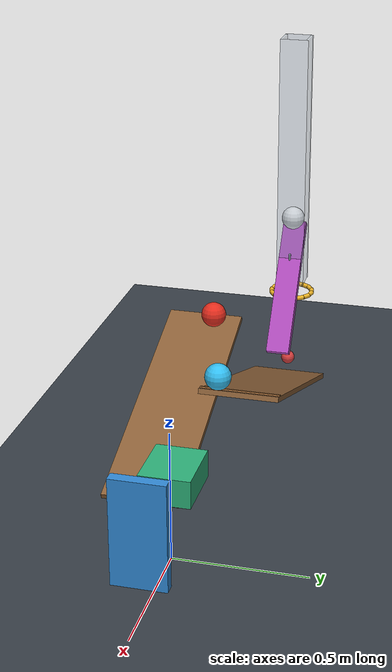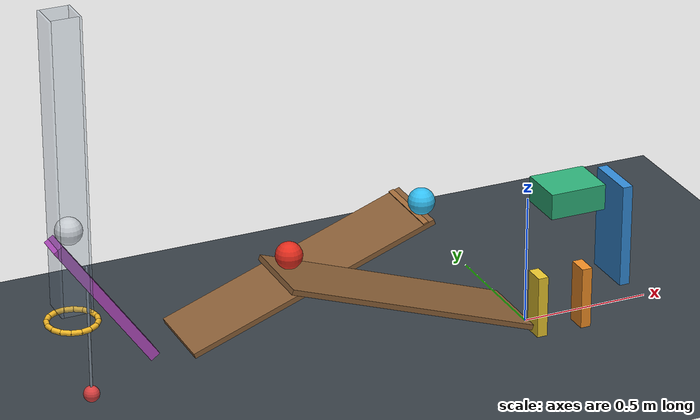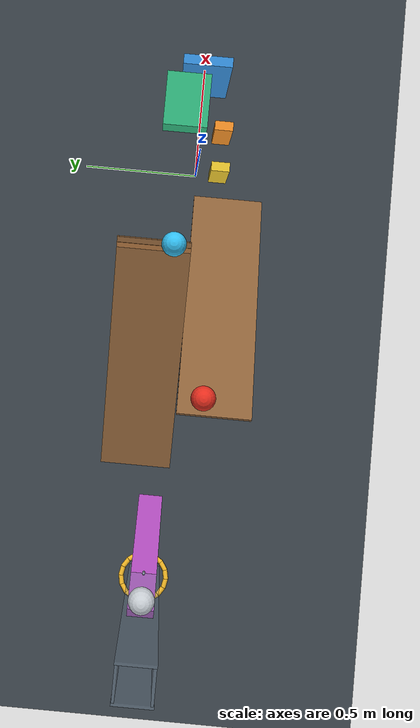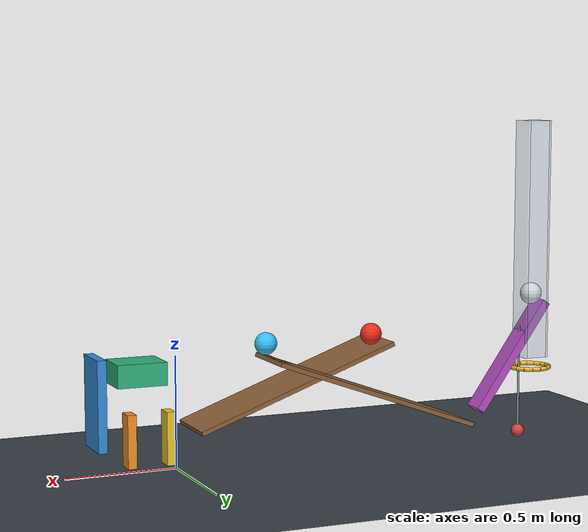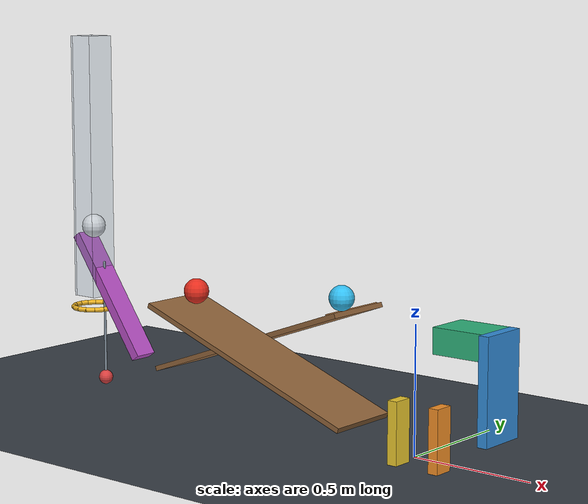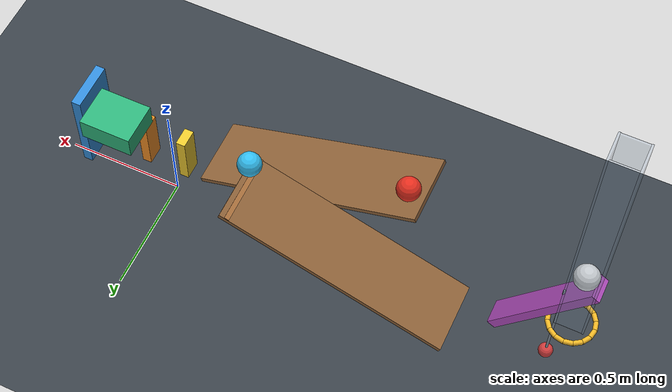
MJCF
<mujoco model="passive_chain_reaction">
  <compiler angle="degree" autolimits="true" inertiafromgeom="true"/>
  <option timestep="0.002" gravity="0 0 -9.81" integrator="implicitfast" solver="Newton" iterations="100" tolerance="1e-10"/>
  <size njmax="3000" nconmax="500"/>

  <default>
    <joint armature="0" frictionloss="0" solreflimit="0.004 1" solimplimit="0.999 0.9999 0.0001"/>
    <geom friction="0.70 0.005 0.0001" condim="3" solref="0.008 0.6901" solimp="0.95 0.99 0.001" margin="0" rgba="0.65 0.65 0.70 1"/>
  </default>

  <visual>
    <headlight ambient="0.45 0.45 0.45" diffuse="0.75 0.75 0.75" specular="0.15 0.15 0.15"/>
    <global azimuth="130" elevation="-20"/>
  </visual>

  <worldbody>
    <light name="overhead_light" pos="-0.8 -1.5 3" dir="0.1 0.3 -1" directional="true"/>
    <camera name="overview" pos="-3.4 -4.2 2.6" xyaxes="0.85 -0.53 0 0.24 0.38 0.89"/>
    <geom name="floor" type="plane" size="5 4 0.1" rgba="0.22 0.25 0.28 1"/>

    <!-- Ramp surface: 1.00 m long, 0.30 m wide; low surface edge z = 0.15. -->
    <body name="ramp1" pos="-0.593266511 -0.15 0.311613146" quat="0.984807753 0 0.173648178 0">
      <geom name="ramp1_surface" type="box" size="0.50 0.15 0.01" rgba="0.55 0.38 0.22 1"/>
    </body>

    <body name="ball1" pos="-0.990908 -0.10 0.520194">
      <freejoint name="ball1_free"/>
      <geom name="ball1_sphere" type="sphere" size="0.05" mass="0.20" rgba="0.90 0.18 0.12 1"/>
    </body>

    <!-- The ramp exit is 0.10 m from domino1's upstream face. -->
    <body name="domino1" pos="0 -0.10 0.12">
      <freejoint name="domino1_free"/>
      <geom name="domino1_box" type="box" size="0.02 0.04 0.12" mass="0.25" rgba="0.92 0.78 0.18 1"/>
    </body>

    <body name="domino2" pos="0.18 -0.10 0.12">
      <freejoint name="domino2_free"/>
      <geom name="domino2_box" type="box" size="0.02 0.04 0.12" mass="0.25" rgba="0.95 0.56 0.15 1"/>
    </body>

    <!-- The off-center hinge leaves the panel upright until struck.
         Its lower portion moves right, while its upper portion strikes
         the elevated cart toward the left. -->
    <body name="flap1" pos="0.36 0 0.22">
      <joint name="flap1_hinge" type="hinge" axis="0 -1 0" range="0 65" damping="0.04"/>
      <geom name="flap1_panel" type="box" pos="0 0 0.10" size="0.02 0.10 0.20" mass="0.30" rgba="0.20 0.55 0.85 1"/>
    </body>

    <body name="cart1" pos="0.20 0.07 0.455">
      <joint name="cart1_slide" type="slide" axis="-1 0 0" range="0 0.47" damping="0.20"/>
      <geom name="cart1_box" type="box" size="0.11 0.09 0.05" mass="0.50" rgba="0.18 0.70 0.48 1"/>
    </body>

    <!-- Ramp2 descends toward negative x. Its small starting lip holds
         ball2 until the approaching cart pushes it out of the pocket. -->
    <body name="ramp2" pos="-0.845916109 0.15 0.311613146" quat="0.984807753 0 -0.173648178 0">
      <geom name="ramp2_surface" type="box" size="0.50 0.15 0.01" rgba="0.55 0.38 0.22 1"/>
      <geom name="ramp2_start_lip" type="box" pos="0.468205505 0 0.0125" size="0.01 0.15 0.0025" rgba="0.65 0.43 0.23 1"/>
    </body>

    <body name="ball2" pos="-0.396591007 0.07 0.539005405">
      <freejoint name="ball2_free"/>
      <geom name="ball2_sphere" type="sphere" size="0.05" mass="0.20" rgba="0.20 0.75 0.95 1"/>
    </body>

    <body name="lever1" pos="-1.6276385 0.07 0.405745613" quat="0 0.461748613 0 0.887010833">
      <joint name="lever1_hinge" type="hinge" axis="0 -1 0" range="0 45" damping="0.04" stiffness="0.40" springref="70"/>
      <geom name="lever1_beam" type="box" size="0.30 0.05 0.02" mass="0.50" rgba="0.70 0.30 0.75 1"/>
    </body>

    <body name="ball3" pos="-1.742370763 0.07 0.691641577">
      <freejoint name="ball3_free"/>
      <geom name="ball3_sphere" type="sphere" size="0.05" mass="0.20" contype="5" conaffinity="5" rgba="0.95 0.95 0.95 1"/>
    </body>

    <!-- Narrow vertical guides constrain launch drift. Their collision
         layer interacts with ball3, but not with the sweeping lever. -->
    <body name="ball3_guide" pos="-1.742370763 0.07 0">
      <geom name="ball3_guide_xminus" type="box" pos="-0.0545 0 0.945820789" size="0.004 0.060 0.554179211" contype="4" conaffinity="4" rgba="0.55 0.65 0.75 0.28"/>
      <geom name="ball3_guide_xplus" type="box" pos="0.0545 0 0.945820789" size="0.004 0.060 0.554179211" contype="4" conaffinity="4" rgba="0.55 0.65 0.75 0.28"/>
      <geom name="ball3_guide_yminus" type="box" pos="0 -0.0545 0.945820789" size="0.0505 0.004 0.554179211" contype="4" conaffinity="4" rgba="0.55 0.65 0.75 0.28"/>
      <geom name="ball3_guide_yplus" type="box" pos="0 0.0545 0.945820789" size="0.0505 0.004 0.554179211" contype="4" conaffinity="4" rgba="0.55 0.65 0.75 0.28"/>
    </body>

    <!-- Sixteen capsule segments form a horizontal ring with a
         0.16 m inscribed clear diameter. -->
    <body name="ring1" pos="-1.742370763 0.07 0.341641577">
      <geom name="ring1_segment00" type="capsule" fromto="0.09176379 0 0 0.08477906 0.03511626 0" size="0.01" rgba="0.95 0.72 0.15 1"/>
      <geom name="ring1_segment01" type="capsule" fromto="0.08477906 0.03511626 0 0.06488701 0.06488701 0" size="0.01" rgba="0.95 0.72 0.15 1"/>
      <geom name="ring1_segment02" type="capsule" fromto="0.06488701 0.06488701 0 0.03511626 0.08477906 0" size="0.01" rgba="0.95 0.72 0.15 1"/>
      <geom name="ring1_segment03" type="capsule" fromto="0.03511626 0.08477906 0 0 0.09176379 0" size="0.01" rgba="0.95 0.72 0.15 1"/>
      <geom name="ring1_segment04" type="capsule" fromto="0 0.09176379 0 -0.03511626 0.08477906 0" size="0.01" rgba="0.95 0.72 0.15 1"/>
      <geom name="ring1_segment05" type="capsule" fromto="-0.03511626 0.08477906 0 -0.06488701 0.06488701 0" size="0.01" rgba="0.95 0.72 0.15 1"/>
      <geom name="ring1_segment06" type="capsule" fromto="-0.06488701 0.06488701 0 -0.08477906 0.03511626 0" size="0.01" rgba="0.95 0.72 0.15 1"/>
      <geom name="ring1_segment07" type="capsule" fromto="-0.08477906 0.03511626 0 -0.09176379 0 0" size="0.01" rgba="0.95 0.72 0.15 1"/>
      <geom name="ring1_segment08" type="capsule" fromto="-0.09176379 0 0 -0.08477906 -0.03511626 0" size="0.01" rgba="0.95 0.72 0.15 1"/>
      <geom name="ring1_segment09" type="capsule" fromto="-0.08477906 -0.03511626 0 -0.06488701 -0.06488701 0" size="0.01" rgba="0.95 0.72 0.15 1"/>
      <geom name="ring1_segment10" type="capsule" fromto="-0.06488701 -0.06488701 0 -0.03511626 -0.08477906 0" size="0.01" rgba="0.95 0.72 0.15 1"/>
      <geom name="ring1_segment11" type="capsule" fromto="-0.03511626 -0.08477906 0 0 -0.09176379 0" size="0.01" rgba="0.95 0.72 0.15 1"/>
      <geom name="ring1_segment12" type="capsule" fromto="0 -0.09176379 0 0.03511626 -0.08477906 0" size="0.01" rgba="0.95 0.72 0.15 1"/>
      <geom name="ring1_segment13" type="capsule" fromto="0.03511626 -0.08477906 0 0.06488701 -0.06488701 0" size="0.01" rgba="0.95 0.72 0.15 1"/>
      <geom name="ring1_segment14" type="capsule" fromto="0.06488701 -0.06488701 0 0.08477906 -0.03511626 0" size="0.01" rgba="0.95 0.72 0.15 1"/>
      <geom name="ring1_segment15" type="capsule" fromto="0.08477906 -0.03511626 0 0.09176379 0 0" size="0.01" rgba="0.95 0.72 0.15 1"/>
    </body>

    <!-- The lateral bob offset lets the falling ball miss the rod and
         contact the bob after 0.25 m of descent below the ring plane. -->
    <body name="pendulum1" pos="-1.682370763 0.07 0.538726551">
      <joint name="pendulum1_hinge" type="hinge" axis="0 1 0" damping="0.04"/>
      <geom name="pendulum1_rod" type="capsule" fromto="0 0 0 0 0 -0.50" size="0.005" mass="0.015" rgba="0.50 0.55 0.60 1"/>
      <geom name="pendulum1_bob" type="sphere" pos="0 0 -0.50" size="0.03" mass="0.335" rgba="0.85 0.25 0.25 1"/>
    </body>
  </worldbody>

  <keyframe>
    <key name="start"/>
  </keyframe>
</mujoco>
